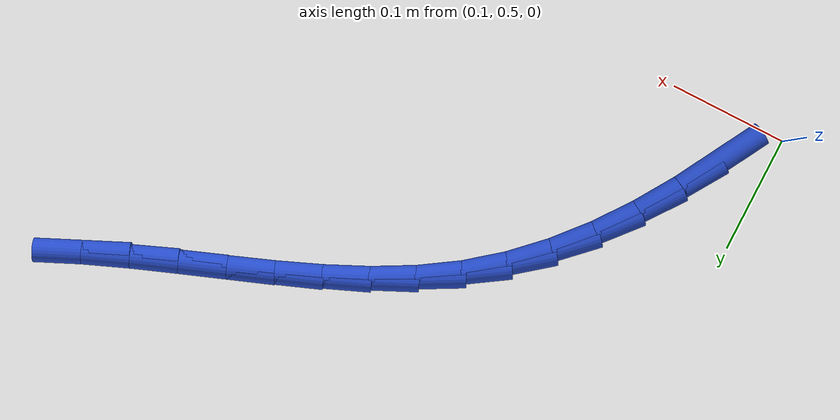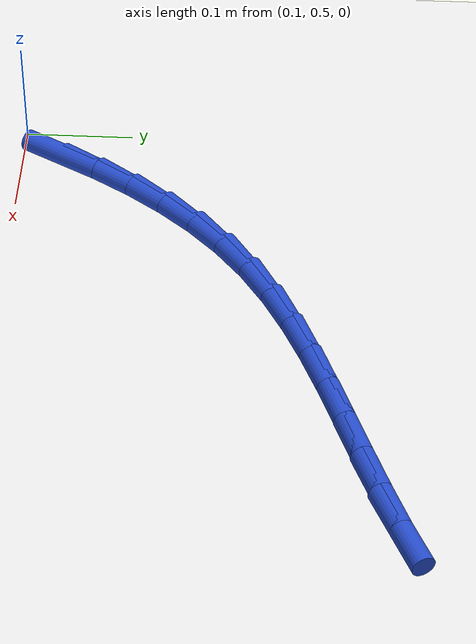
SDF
<sdf version="1.6">
 <world name="default">
  <model name="ground_plane">
   <static>1</static>
   <link name="link">
    <collision name="collision">
     <geometry><plane><normal>0 0 1</normal><size>100 100</size></plane></geometry>
     <surface><friction><ode><mu>100</mu><mu2>50</mu2></ode></friction></surface>
    </collision>
    <visual name="visual">
     <cast_shadows>0</cast_shadows>
     <geometry><plane><normal>0 0 1</normal><size>100 100</size></plane></geometry>
     <material>
      <script><uri>file://media/materials/scripts/gazebo.material</uri><name>Gazebo/WhiteGlow</name></script>
     </material>
    </visual>
   </link>
  </model>
  <model name="line">
   <link name="link_14">
    <pose>0.1389725418885757 0.5378276315372013 0.01 0 1.57 1.0579701176258907</pose>
    <collision name="collision">
     <geometry><cylinder><radius>0.01</radius><length>0.08</length></cylinder></geometry>
    </collision>
    <visual name="visual">
     <material>
      <script><name>Gazebo/Blue</name><uri>file://media/materials/scripts/gazebo.material</uri></script>
     </material>
     <geometry><cylinder><radius>0.01</radius><length>0.08</length></cylinder></geometry>
    </visual>
   </link>
   <link name="link_15">
    <pose>0.15869490611393602 0.572853802854916 0.01 0 1.57 0.9989366385932948</pose>
    <collision name="collision">
     <geometry><cylinder><radius>0.01</radius><length>0.08</length></cylinder></geometry>
    </collision>
    <visual name="visual">
     <material>
      <script><name>Gazebo/Blue</name><uri>file://media/materials/scripts/gazebo.material</uri></script>
     </material>
     <geometry><cylinder><radius>0.01</radius><length>0.08</length></cylinder></geometry>
    </visual>
   </link>
   <link name="link_16">
    <pose>0.1801662034780783 0.6062152859224151 0.01 0 1.57 0.9314431742263272</pose>
    <collision name="collision">
     <geometry><cylinder><radius>0.01</radius><length>0.08</length></cylinder></geometry>
    </collision>
    <visual name="visual">
     <material>
      <script><name>Gazebo/Blue</name><uri>file://media/materials/scripts/gazebo.material</uri></script>
     </material>
     <geometry><cylinder><radius>0.01</radius><length>0.08</length></cylinder></geometry>
    </visual>
   </link>
   <link name="link_17">
    <pose>0.20350966933583967 0.6376103702054678 0.01 0 1.57 0.8548364505420084</pose>
    <collision name="collision">
     <geometry><cylinder><radius>0.01</radius><length>0.08</length></cylinder></geometry>
    </collision>
    <visual name="visual">
     <material>
      <script><name>Gazebo/Blue</name><uri>file://media/materials/scripts/gazebo.material</uri></script>
     </material>
     <geometry><cylinder><radius>0.01</radius><length>0.08</length></cylinder></geometry>
    </visual>
   </link>
   <link name="link_18">
    <pose>0.2288485390420575 0.6667373451698434 0.01 0 1.57 0.7687310149127787</pose>
    <collision name="collision">
     <geometry><cylinder><radius>0.01</radius><length>0.08</length></cylinder></geometry>
    </collision>
    <visual name="visual">
     <material>
      <script><name>Gazebo/Blue</name><uri>file://media/materials/scripts/gazebo.material</uri></script>
     </material>
     <geometry><cylinder><radius>0.01</radius><length>0.08</length></cylinder></geometry>
    </visual>
   </link>
   <link name="link_19">
    <pose>0.2563060479515689 0.693294500281311 0.01 0 1.57 0.6732660874902245</pose>
    <collision name="collision">
     <geometry><cylinder><radius>0.01</radius><length>0.08</length></cylinder></geometry>
    </collision>
    <visual name="visual">
     <material>
      <script><name>Gazebo/Blue</name><uri>file://media/materials/scripts/gazebo.material</uri></script>
     </material>
     <geometry><cylinder><radius>0.01</radius><length>0.08</length></cylinder></geometry>
    </visual>
   </link>
   <link name="link_20">
    <pose>0.28600457537489227 0.7169815731609596 0.01 0 1.57 0.576838897761728</pose>
    <collision name="collision">
     <geometry><cylinder><radius>0.01</radius><length>0.08</length></cylinder></geometry>
    </collision>
    <visual name="visual">
     <material>
      <script><name>Gazebo/Blue</name><uri>file://media/materials/scripts/gazebo.material</uri></script>
     </material>
     <geometry><cylinder><radius>0.01</radius><length>0.08</length></cylinder></geometry>
    </visual>
   </link>
   <link name="link_21">
    <pose>0.3179193500844083 0.7377472334417822 0.01 0 1.57 0.4968217438743447</pose>
    <collision name="collision">
     <geometry><cylinder><radius>0.01</radius><length>0.08</length></cylinder></geometry>
    </collision>
    <visual name="visual">
     <material>
      <script><name>Gazebo/Blue</name><uri>file://media/materials/scripts/gazebo.material</uri></script>
     </material>
     <geometry><cylinder><radius>0.01</radius><length>0.08</length></cylinder></geometry>
    </visual>
   </link>
   <link name="link_22">
    <pose>0.3517127322501112 0.7560694251423071 0.01 0 1.57 0.43554988571270187</pose>
    <collision name="collision">
     <geometry><cylinder><radius>0.01</radius><length>0.08</length></cylinder></geometry>
    </collision>
    <visual name="visual">
     <material>
      <script><name>Gazebo/Blue</name><uri>file://media/materials/scripts/gazebo.material</uri></script>
     </material>
     <geometry><cylinder><radius>0.01</radius><length>0.08</length></cylinder></geometry>
    </visual>
   </link>
   <link name="link_23">
    <pose>0.38700704337566716 0.7724938249981079 0.01 0 1.57 0.3924092793767784</pose>
    <collision name="collision">
     <geometry><cylinder><radius>0.01</radius><length>0.08</length></cylinder></geometry>
    </collision>
    <visual name="visual">
     <material>
      <script><name>Gazebo/Blue</name><uri>file://media/materials/scripts/gazebo.material</uri></script>
     </material>
     <geometry><cylinder><radius>0.01</radius><length>0.08</length></cylinder></geometry>
    </visual>
   </link>
   <link name="link_24">
    <pose>0.42342460496474243 0.787566109744759 0.01 0 1.57 0.36652514610684656</pose>
    <collision name="collision">
     <geometry><cylinder><radius>0.01</radius><length>0.08</length></cylinder></geometry>
    </collision>
    <visual name="visual">
     <material>
      <script><name>Gazebo/Blue</name><uri>file://media/materials/scripts/gazebo.material</uri></script>
     </material>
     <geometry><cylinder><radius>0.01</radius><length>0.08</length></cylinder></geometry>
    </visual>
   </link>
   <link name="link_25">
    <pose>0.46058773852100404 0.8018319561178348 0.01 0 1.57 0.35715670100760194</pose>
    <collision name="collision">
     <geometry><cylinder><radius>0.01</radius><length>0.08</length></cylinder></geometry>
    </collision>
    <visual name="visual">
     <material>
      <script><name>Gazebo/Blue</name><uri>file://media/materials/scripts/gazebo.material</uri></script>
     </material>
     <geometry><cylinder><radius>0.01</radius><length>0.08</length></cylinder></geometry>
    </visual>
   </link>
   <link name="link_26">
    <pose>0.49811876554811807 0.8158370408529088 0.01 0 1.57 0.36389035789225177</pose>
    <collision name="collision">
     <geometry><cylinder><radius>0.01</radius><length>0.08</length></cylinder></geometry>
    </collision>
    <visual name="visual">
     <material>
      <script><name>Gazebo/Blue</name><uri>file://media/materials/scripts/gazebo.material</uri></script>
     </material>
     <geometry><cylinder><radius>0.01</radius><length>0.08</length></cylinder></geometry>
    </visual>
   </link>
   <link name="link_27">
    <pose>0.5356400075497507 0.8301270406855555 0.01 0 1.57 0.38669128690416615</pose>
    <collision name="collision">
     <geometry><cylinder><radius>0.01</radius><length>0.08</length></cylinder></geometry>
    </collision>
    <visual name="visual">
     <material>
      <script><name>Gazebo/Blue</name><uri>file://media/materials/scripts/gazebo.material</uri></script>
     </material>
     <geometry><cylinder><radius>0.01</radius><length>0.08</length></cylinder></geometry>
    </visual>
   </link>
   <link name="link_28">
    <pose>0.5727737860295689 0.8452476323513488 0.01 0 1.57 0.42584471823210596</pose>
    <collision name="collision">
     <geometry><cylinder><radius>0.01</radius><length>0.08</length></cylinder></geometry>
    </collision>
    <visual name="visual">
     <material>
      <script><name>Gazebo/Blue</name><uri>file://media/materials/scripts/gazebo.material</uri></script>
     </material>
     <geometry><cylinder><radius>0.01</radius><length>0.08</length></cylinder></geometry>
    </visual>
   </link>
  </model>
 </world>
</sdf>
